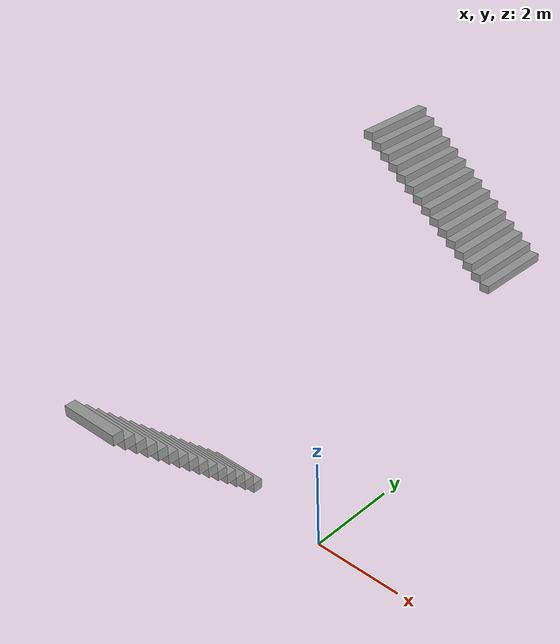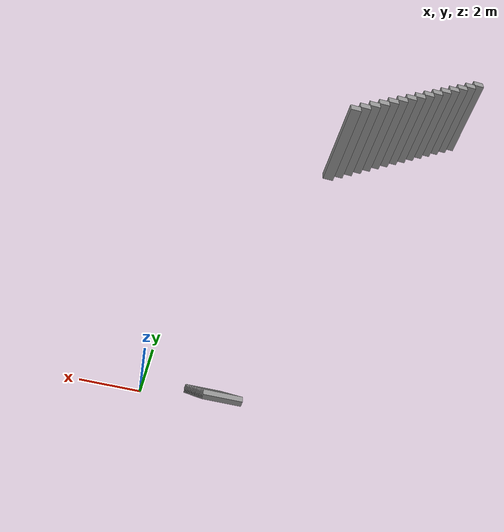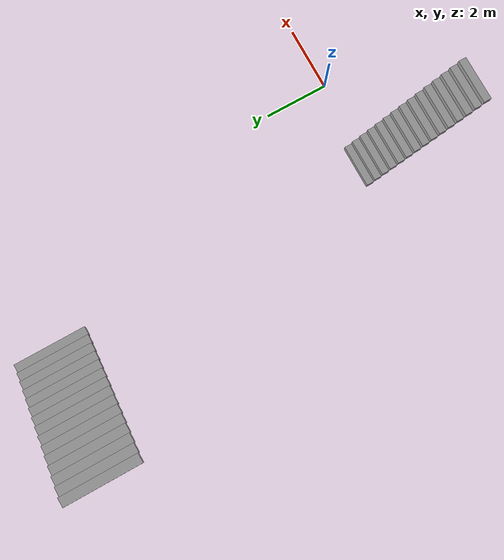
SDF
<?xml version='1.0'?>
<sdf version='1.6'>
  <model name='stairs'>
    <pose frame=''>-4.70639 4.5881 0 0 -0 0</pose>
    <link name='Stairs_2'>
      <visual name='Stairs_2_Visual_0'>
        <pose frame=''>1.99426 -4.2368 0.113333 0 -0 0</pose>
        <geometry>
          <box>
            <size>1.35179 0.233333 0.226667</size>
          </box>
        </geometry>
        <material>
          <script>
            <uri>file://media/materials/scripts/gazebo.material</uri>
            <name>Gazebo/Grey</name>
          </script>
          <ambient>1 1 1 1</ambient>
        </material>
        <meta>
          <layer>0</layer>
        </meta>
      </visual>
      <collision name='Stairs_2_Collision_0'>
        <geometry>
          <box>
            <size>1.35179 0.233333 0.226667</size>
          </box>
        </geometry>
        <pose frame=''>1.99426 -4.2368 0.113333 0 -0 0</pose>
      </collision>
      <visual name='Stairs_2_Visual_1'>
        <pose frame=''>1.99426 -4.47013 0.34 0 -0 0</pose>
        <geometry>
          <box>
            <size>1.35179 0.233333 0.226667</size>
          </box>
        </geometry>
        <material>
          <script>
            <uri>file://media/materials/scripts/gazebo.material</uri>
            <name>Gazebo/Grey</name>
          </script>
          <ambient>1 1 1 1</ambient>
        </material>
        <meta>
          <layer>0</layer>
        </meta>
      </visual>
      <collision name='Stairs_2_Collision_1'>
        <geometry>
          <box>
            <size>1.35179 0.233333 0.226667</size>
          </box>
        </geometry>
        <pose frame=''>1.99426 -4.47013 0.34 0 -0 0</pose>
      </collision>
      <visual name='Stairs_2_Visual_2'>
        <pose frame=''>1.99426 -4.70346 0.566667 0 -0 0</pose>
        <geometry>
          <box>
            <size>1.35179 0.233333 0.226667</size>
          </box>
        </geometry>
        <material>
          <script>
            <uri>file://media/materials/scripts/gazebo.material</uri>
            <name>Gazebo/Grey</name>
          </script>
          <ambient>1 1 1 1</ambient>
        </material>
        <meta>
          <layer>0</layer>
        </meta>
      </visual>
      <collision name='Stairs_2_Collision_2'>
        <geometry>
          <box>
            <size>1.35179 0.233333 0.226667</size>
          </box>
        </geometry>
        <pose frame=''>1.99426 -4.70346 0.566667 0 -0 0</pose>
      </collision>
      <visual name='Stairs_2_Visual_3'>
        <pose frame=''>1.99426 -4.9368 0.793333 0 -0 0</pose>
        <geometry>
          <box>
            <size>1.35179 0.233333 0.226667</size>
          </box>
        </geometry>
        <material>
          <script>
            <uri>file://media/materials/scripts/gazebo.material</uri>
            <name>Gazebo/Grey</name>
          </script>
          <ambient>1 1 1 1</ambient>
        </material>
        <meta>
          <layer>0</layer>
        </meta>
      </visual>
      <collision name='Stairs_2_Collision_3'>
        <geometry>
          <box>
            <size>1.35179 0.233333 0.226667</size>
          </box>
        </geometry>
        <pose frame=''>1.99426 -4.9368 0.793333 0 -0 0</pose>
      </collision>
      <visual name='Stairs_2_Visual_4'>
        <pose frame=''>1.99426 -5.17013 1.02 0 -0 0</pose>
        <geometry>
          <box>
            <size>1.35179 0.233333 0.226667</size>
          </box>
        </geometry>
        <material>
          <script>
            <uri>file://media/materials/scripts/gazebo.material</uri>
            <name>Gazebo/Grey</name>
          </script>
          <ambient>1 1 1 1</ambient>
        </material>
        <meta>
          <layer>0</layer>
        </meta>
      </visual>
      <collision name='Stairs_2_Collision_4'>
        <geometry>
          <box>
            <size>1.35179 0.233333 0.226667</size>
          </box>
        </geometry>
        <pose frame=''>1.99426 -5.17013 1.02 0 -0 0</pose>
      </collision>
      <visual name='Stairs_2_Visual_5'>
        <pose frame=''>1.99426 -5.40346 1.24667 0 -0 0</pose>
        <geometry>
          <box>
            <size>1.35179 0.233333 0.226667</size>
          </box>
        </geometry>
        <material>
          <script>
            <uri>file://media/materials/scripts/gazebo.material</uri>
            <name>Gazebo/Grey</name>
          </script>
          <ambient>1 1 1 1</ambient>
        </material>
        <meta>
          <layer>0</layer>
        </meta>
      </visual>
      <collision name='Stairs_2_Collision_5'>
        <geometry>
          <box>
            <size>1.35179 0.233333 0.226667</size>
          </box>
        </geometry>
        <pose frame=''>1.99426 -5.40346 1.24667 0 -0 0</pose>
      </collision>
      <visual name='Stairs_2_Visual_6'>
        <pose frame=''>1.99426 -5.6368 1.47333 0 -0 0</pose>
        <geometry>
          <box>
            <size>1.35179 0.233333 0.226667</size>
          </box>
        </geometry>
        <material>
          <script>
            <uri>file://media/materials/scripts/gazebo.material</uri>
            <name>Gazebo/Grey</name>
          </script>
          <ambient>1 1 1 1</ambient>
        </material>
        <meta>
          <layer>0</layer>
        </meta>
      </visual>
      <collision name='Stairs_2_Collision_6'>
        <geometry>
          <box>
            <size>1.35179 0.233333 0.226667</size>
          </box>
        </geometry>
        <pose frame=''>1.99426 -5.6368 1.47333 0 -0 0</pose>
      </collision>
      <visual name='Stairs_2_Visual_7'>
        <pose frame=''>1.99426 -5.87013 1.7 0 -0 0</pose>
        <geometry>
          <box>
            <size>1.35179 0.233333 0.226667</size>
          </box>
        </geometry>
        <material>
          <script>
            <uri>file://media/materials/scripts/gazebo.material</uri>
            <name>Gazebo/Grey</name>
          </script>
          <ambient>1 1 1 1</ambient>
        </material>
        <meta>
          <layer>0</layer>
        </meta>
      </visual>
      <collision name='Stairs_2_Collision_7'>
        <geometry>
          <box>
            <size>1.35179 0.233333 0.226667</size>
          </box>
        </geometry>
        <pose frame=''>1.99426 -5.87013 1.7 0 -0 0</pose>
      </collision>
      <visual name='Stairs_2_Visual_8'>
        <pose frame=''>1.99426 -6.10346 1.92667 0 -0 0</pose>
        <geometry>
          <box>
            <size>1.35179 0.233333 0.226667</size>
          </box>
        </geometry>
        <material>
          <script>
            <uri>file://media/materials/scripts/gazebo.material</uri>
            <name>Gazebo/Grey</name>
          </script>
          <ambient>1 1 1 1</ambient>
        </material>
        <meta>
          <layer>0</layer>
        </meta>
      </visual>
      <collision name='Stairs_2_Collision_8'>
        <geometry>
          <box>
            <size>1.35179 0.233333 0.226667</size>
          </box>
        </geometry>
        <pose frame=''>1.99426 -6.10346 1.92667 0 -0 0</pose>
      </collision>
      <visual name='Stairs_2_Visual_9'>
        <pose frame=''>1.99426 -6.3368 2.15333 0 -0 0</pose>
        <geometry>
          <box>
            <size>1.35179 0.233333 0.226667</size>
          </box>
        </geometry>
        <material>
          <script>
            <uri>file://media/materials/scripts/gazebo.material</uri>
            <name>Gazebo/Grey</name>
          </script>
          <ambient>1 1 1 1</ambient>
        </material>
        <meta>
          <layer>0</layer>
        </meta>
      </visual>
      <collision name='Stairs_2_Collision_9'>
        <geometry>
          <box>
            <size>1.35179 0.233333 0.226667</size>
          </box>
        </geometry>
        <pose frame=''>1.99426 -6.3368 2.15333 0 -0 0</pose>
      </collision>
      <visual name='Stairs_2_Visual_10'>
        <pose frame=''>1.99426 -6.57013 2.38 0 -0 0</pose>
        <geometry>
          <box>
            <size>1.35179 0.233333 0.226667</size>
          </box>
        </geometry>
        <material>
          <script>
            <uri>file://media/materials/scripts/gazebo.material</uri>
            <name>Gazebo/Grey</name>
          </script>
          <ambient>1 1 1 1</ambient>
        </material>
        <meta>
          <layer>0</layer>
        </meta>
      </visual>
      <collision name='Stairs_2_Collision_10'>
        <geometry>
          <box>
            <size>1.35179 0.233333 0.226667</size>
          </box>
        </geometry>
        <pose frame=''>1.99426 -6.57013 2.38 0 -0 0</pose>
      </collision>
      <visual name='Stairs_2_Visual_11'>
        <pose frame=''>1.99426 -6.80346 2.60667 0 -0 0</pose>
        <geometry>
          <box>
            <size>1.35179 0.233333 0.226667</size>
          </box>
        </geometry>
        <material>
          <script>
            <uri>file://media/materials/scripts/gazebo.material</uri>
            <name>Gazebo/Grey</name>
          </script>
          <ambient>1 1 1 1</ambient>
        </material>
        <meta>
          <layer>0</layer>
        </meta>
      </visual>
      <collision name='Stairs_2_Collision_11'>
        <geometry>
          <box>
            <size>1.35179 0.233333 0.226667</size>
          </box>
        </geometry>
        <pose frame=''>1.99426 -6.80346 2.60667 0 -0 0</pose>
      </collision>
      <visual name='Stairs_2_Visual_12'>
        <pose frame=''>1.99426 -7.0368 2.83333 0 -0 0</pose>
        <geometry>
          <box>
            <size>1.35179 0.233333 0.226667</size>
          </box>
        </geometry>
        <material>
          <script>
            <uri>file://media/materials/scripts/gazebo.material</uri>
            <name>Gazebo/Grey</name>
          </script>
          <ambient>1 1 1 1</ambient>
        </material>
        <meta>
          <layer>0</layer>
        </meta>
      </visual>
      <collision name='Stairs_2_Collision_12'>
        <geometry>
          <box>
            <size>1.35179 0.233333 0.226667</size>
          </box>
        </geometry>
        <pose frame=''>1.99426 -7.0368 2.83333 0 -0 0</pose>
      </collision>
      <visual name='Stairs_2_Visual_13'>
        <pose frame=''>1.99426 -7.27013 3.06 0 -0 0</pose>
        <geometry>
          <box>
            <size>1.35179 0.233333 0.226667</size>
          </box>
        </geometry>
        <material>
          <script>
            <uri>file://media/materials/scripts/gazebo.material</uri>
            <name>Gazebo/Grey</name>
          </script>
          <ambient>1 1 1 1</ambient>
        </material>
        <meta>
          <layer>0</layer>
        </meta>
      </visual>
      <collision name='Stairs_2_Collision_13'>
        <geometry>
          <box>
            <size>1.35179 0.233333 0.226667</size>
          </box>
        </geometry>
        <pose frame=''>1.99426 -7.27013 3.06 0 -0 0</pose>
      </collision>
      <visual name='Stairs_2_Visual_14'>
        <pose frame=''>1.99426 -7.50346 3.28667 0 -0 0</pose>
        <geometry>
          <box>
            <size>1.35179 0.233333 0.226667</size>
          </box>
        </geometry>
        <material>
          <script>
            <uri>file://media/materials/scripts/gazebo.material</uri>
            <name>Gazebo/Grey</name>
          </script>
          <ambient>1 1 1 1</ambient>
        </material>
        <meta>
          <layer>0</layer>
        </meta>
      </visual>
      <collision name='Stairs_2_Collision_14'>
        <geometry>
          <box>
            <size>1.35179 0.233333 0.226667</size>
          </box>
        </geometry>
        <pose frame=''>1.99426 -7.50346 3.28667 0 -0 0</pose>
      </collision>
    </link>
    <link name='Stairs_4'>
      <visual name='Stairs_4_Visual_0'>
        <pose frame=''>1.52518 6.45513 0.113333 0 -0 -1.5708</pose>
        <geometry>
          <box>
            <size>2.33 0.289333 0.226667</size>
          </box>
        </geometry>
        <material>
          <script>
            <uri>file://media/materials/scripts/gazebo.material</uri>
            <name>Gazebo/Grey</name>
          </script>
          <ambient>1 1 1 1</ambient>
        </material>
        <meta>
          <layer>0</layer>
        </meta>
      </visual>
      <collision name='Stairs_4_Collision_0'>
        <geometry>
          <box>
            <size>2.33 0.289333 0.226667</size>
          </box>
        </geometry>
        <pose frame=''>1.52518 6.45513 0.113333 0 -0 -1.5708</pose>
      </collision>
      <visual name='Stairs_4_Visual_1'>
        <pose frame=''>1.23585 6.45513 0.34 0 -0 -1.5708</pose>
        <geometry>
          <box>
            <size>2.33 0.289333 0.226667</size>
          </box>
        </geometry>
        <material>
          <script>
            <uri>file://media/materials/scripts/gazebo.material</uri>
            <name>Gazebo/Grey</name>
          </script>
          <ambient>1 1 1 1</ambient>
        </material>
        <meta>
          <layer>0</layer>
        </meta>
      </visual>
      <collision name='Stairs_4_Collision_1'>
        <geometry>
          <box>
            <size>2.33 0.289333 0.226667</size>
          </box>
        </geometry>
        <pose frame=''>1.23585 6.45513 0.34 0 -0 -1.5708</pose>
      </collision>
      <visual name='Stairs_4_Visual_2'>
        <pose frame=''>0.946515 6.45513 0.566667 0 -0 -1.5708</pose>
        <geometry>
          <box>
            <size>2.33 0.289333 0.226667</size>
          </box>
        </geometry>
        <material>
          <script>
            <uri>file://media/materials/scripts/gazebo.material</uri>
            <name>Gazebo/Grey</name>
          </script>
          <ambient>1 1 1 1</ambient>
        </material>
        <meta>
          <layer>0</layer>
        </meta>
      </visual>
      <collision name='Stairs_4_Collision_2'>
        <geometry>
          <box>
            <size>2.33 0.289333 0.226667</size>
          </box>
        </geometry>
        <pose frame=''>0.946515 6.45513 0.566667 0 -0 -1.5708</pose>
      </collision>
      <visual name='Stairs_4_Visual_3'>
        <pose frame=''>0.657182 6.45513 0.793333 0 -0 -1.5708</pose>
        <geometry>
          <box>
            <size>2.33 0.289333 0.226667</size>
          </box>
        </geometry>
        <material>
          <script>
            <uri>file://media/materials/scripts/gazebo.material</uri>
            <name>Gazebo/Grey</name>
          </script>
          <ambient>1 1 1 1</ambient>
        </material>
        <meta>
          <layer>0</layer>
        </meta>
      </visual>
      <collision name='Stairs_4_Collision_3'>
        <geometry>
          <box>
            <size>2.33 0.289333 0.226667</size>
          </box>
        </geometry>
        <pose frame=''>0.657182 6.45513 0.793333 0 -0 -1.5708</pose>
      </collision>
      <visual name='Stairs_4_Visual_4'>
        <pose frame=''>0.367848 6.45513 1.02 0 -0 -1.5708</pose>
        <geometry>
          <box>
            <size>2.33 0.289333 0.226667</size>
          </box>
        </geometry>
        <material>
          <script>
            <uri>file://media/materials/scripts/gazebo.material</uri>
            <name>Gazebo/Grey</name>
          </script>
          <ambient>1 1 1 1</ambient>
        </material>
        <meta>
          <layer>0</layer>
        </meta>
      </visual>
      <collision name='Stairs_4_Collision_4'>
        <geometry>
          <box>
            <size>2.33 0.289333 0.226667</size>
          </box>
        </geometry>
        <pose frame=''>0.367848 6.45513 1.02 0 -0 -1.5708</pose>
      </collision>
      <visual name='Stairs_4_Visual_5'>
        <pose frame=''>0.078515 6.45513 1.24667 0 -0 -1.5708</pose>
        <geometry>
          <box>
            <size>2.33 0.289333 0.226667</size>
          </box>
        </geometry>
        <material>
          <script>
            <uri>file://media/materials/scripts/gazebo.material</uri>
            <name>Gazebo/Grey</name>
          </script>
          <ambient>1 1 1 1</ambient>
        </material>
        <meta>
          <layer>0</layer>
        </meta>
      </visual>
      <collision name='Stairs_4_Collision_5'>
        <geometry>
          <box>
            <size>2.33 0.289333 0.226667</size>
          </box>
        </geometry>
        <pose frame=''>0.078515 6.45513 1.24667 0 -0 -1.5708</pose>
      </collision>
      <visual name='Stairs_4_Visual_6'>
        <pose frame=''>-0.210819 6.45513 1.47333 0 -0 -1.5708</pose>
        <geometry>
          <box>
            <size>2.33 0.289333 0.226667</size>
          </box>
        </geometry>
        <material>
          <script>
            <uri>file://media/materials/scripts/gazebo.material</uri>
            <name>Gazebo/Grey</name>
          </script>
          <ambient>1 1 1 1</ambient>
        </material>
        <meta>
          <layer>0</layer>
        </meta>
      </visual>
      <collision name='Stairs_4_Collision_6'>
        <geometry>
          <box>
            <size>2.33 0.289333 0.226667</size>
          </box>
        </geometry>
        <pose frame=''>-0.210819 6.45513 1.47333 0 -0 -1.5708</pose>
      </collision>
      <visual name='Stairs_4_Visual_7'>
        <pose frame=''>-0.500152 6.45513 1.7 0 -0 -1.5708</pose>
        <geometry>
          <box>
            <size>2.33 0.289333 0.226667</size>
          </box>
        </geometry>
        <material>
          <script>
            <uri>file://media/materials/scripts/gazebo.material</uri>
            <name>Gazebo/Grey</name>
          </script>
          <ambient>1 1 1 1</ambient>
        </material>
        <meta>
          <layer>0</layer>
        </meta>
      </visual>
      <collision name='Stairs_4_Collision_7'>
        <geometry>
          <box>
            <size>2.33 0.289333 0.226667</size>
          </box>
        </geometry>
        <pose frame=''>-0.500152 6.45513 1.7 0 -0 -1.5708</pose>
      </collision>
      <visual name='Stairs_4_Visual_8'>
        <pose frame=''>-0.789485 6.45513 1.92667 0 -0 -1.5708</pose>
        <geometry>
          <box>
            <size>2.33 0.289333 0.226667</size>
          </box>
        </geometry>
        <material>
          <script>
            <uri>file://media/materials/scripts/gazebo.material</uri>
            <name>Gazebo/Grey</name>
          </script>
          <ambient>1 1 1 1</ambient>
        </material>
        <meta>
          <layer>0</layer>
        </meta>
      </visual>
      <collision name='Stairs_4_Collision_8'>
        <geometry>
          <box>
            <size>2.33 0.289333 0.226667</size>
          </box>
        </geometry>
        <pose frame=''>-0.789485 6.45513 1.92667 0 -0 -1.5708</pose>
      </collision>
      <visual name='Stairs_4_Visual_9'>
        <pose frame=''>-1.07882 6.45513 2.15333 0 -0 -1.5708</pose>
        <geometry>
          <box>
            <size>2.33 0.289333 0.226667</size>
          </box>
        </geometry>
        <material>
          <script>
            <uri>file://media/materials/scripts/gazebo.material</uri>
            <name>Gazebo/Grey</name>
          </script>
          <ambient>1 1 1 1</ambient>
        </material>
        <meta>
          <layer>0</layer>
        </meta>
      </visual>
      <collision name='Stairs_4_Collision_9'>
        <geometry>
          <box>
            <size>2.33 0.289333 0.226667</size>
          </box>
        </geometry>
        <pose frame=''>-1.07882 6.45513 2.15333 0 -0 -1.5708</pose>
      </collision>
      <visual name='Stairs_4_Visual_10'>
        <pose frame=''>-1.36815 6.45513 2.38 0 -0 -1.5708</pose>
        <geometry>
          <box>
            <size>2.33 0.289333 0.226667</size>
          </box>
        </geometry>
        <material>
          <script>
            <uri>file://media/materials/scripts/gazebo.material</uri>
            <name>Gazebo/Grey</name>
          </script>
          <ambient>1 1 1 1</ambient>
        </material>
        <meta>
          <layer>0</layer>
        </meta>
      </visual>
      <collision name='Stairs_4_Collision_10'>
        <geometry>
          <box>
            <size>2.33 0.289333 0.226667</size>
          </box>
        </geometry>
        <pose frame=''>-1.36815 6.45513 2.38 0 -0 -1.5708</pose>
      </collision>
      <visual name='Stairs_4_Visual_11'>
        <pose frame=''>-1.65749 6.45513 2.60667 0 -0 -1.5708</pose>
        <geometry>
          <box>
            <size>2.33 0.289333 0.226667</size>
          </box>
        </geometry>
        <material>
          <script>
            <uri>file://media/materials/scripts/gazebo.material</uri>
            <name>Gazebo/Grey</name>
          </script>
          <ambient>1 1 1 1</ambient>
        </material>
        <meta>
          <layer>0</layer>
        </meta>
      </visual>
      <collision name='Stairs_4_Collision_11'>
        <geometry>
          <box>
            <size>2.33 0.289333 0.226667</size>
          </box>
        </geometry>
        <pose frame=''>-1.65749 6.45513 2.60667 0 -0 -1.5708</pose>
      </collision>
      <visual name='Stairs_4_Visual_12'>
        <pose frame=''>-1.94682 6.45513 2.83333 0 -0 -1.5708</pose>
        <geometry>
          <box>
            <size>2.33 0.289333 0.226667</size>
          </box>
        </geometry>
        <material>
          <script>
            <uri>file://media/materials/scripts/gazebo.material</uri>
            <name>Gazebo/Grey</name>
          </script>
          <ambient>1 1 1 1</ambient>
        </material>
        <meta>
          <layer>0</layer>
        </meta>
      </visual>
      <collision name='Stairs_4_Collision_12'>
        <geometry>
          <box>
            <size>2.33 0.289333 0.226667</size>
          </box>
        </geometry>
        <pose frame=''>-1.94682 6.45513 2.83333 0 -0 -1.5708</pose>
      </collision>
      <visual name='Stairs_4_Visual_13'>
        <pose frame=''>-2.23615 6.45513 3.06 0 -0 -1.5708</pose>
        <geometry>
          <box>
            <size>2.33 0.289333 0.226667</size>
          </box>
        </geometry>
        <material>
          <script>
            <uri>file://media/materials/scripts/gazebo.material</uri>
            <name>Gazebo/Grey</name>
          </script>
          <ambient>1 1 1 1</ambient>
        </material>
        <meta>
          <layer>0</layer>
        </meta>
      </visual>
      <collision name='Stairs_4_Collision_13'>
        <geometry>
          <box>
            <size>2.33 0.289333 0.226667</size>
          </box>
        </geometry>
        <pose frame=''>-2.23615 6.45513 3.06 0 -0 -1.5708</pose>
      </collision>
      <visual name='Stairs_4_Visual_14'>
        <pose frame=''>-2.52549 6.45513 3.28667 0 -0 -1.5708</pose>
        <geometry>
          <box>
            <size>2.33 0.289333 0.226667</size>
          </box>
        </geometry>
        <material>
          <script>
            <uri>file://media/materials/scripts/gazebo.material</uri>
            <name>Gazebo/Grey</name>
          </script>
          <ambient>1 1 1 1</ambient>
        </material>
        <meta>
          <layer>0</layer>
        </meta>
      </visual>
      <collision name='Stairs_4_Collision_14'>
        <geometry>
          <box>
            <size>2.33 0.289333 0.226667</size>
          </box>
        </geometry>
        <pose frame=''>-2.52549 6.45513 3.28667 0 -0 -1.5708</pose>
      </collision>
    </link>
    <static>1</static>
  </model>
</sdf>
